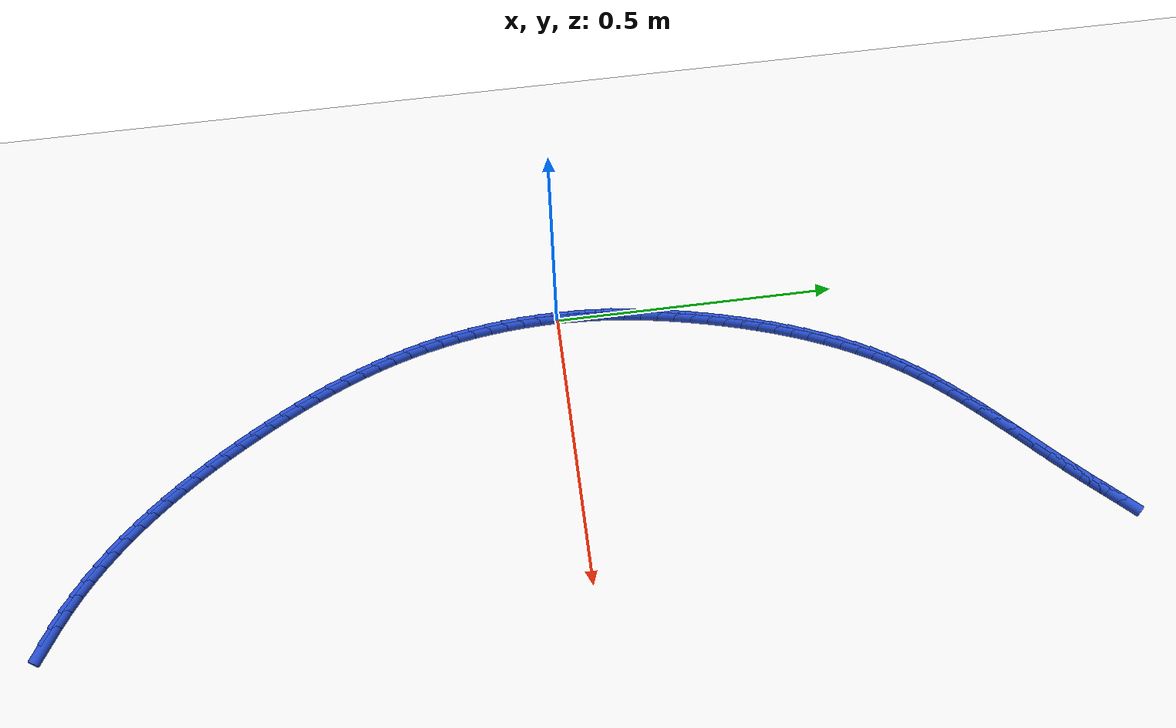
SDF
<sdf version="1.6">
 <world name="default">
  <model name="ground_plane">
   <static>1</static>
   <link name="link">
    <collision name="collision">
     <geometry><plane><normal>0 0 1</normal><size>100 100</size></plane></geometry>
     <surface><friction><ode><mu>100</mu><mu2>50</mu2></ode></friction></surface>
    </collision>
    <visual name="visual">
     <cast_shadows>0</cast_shadows>
     <geometry><plane><normal>0 0 1</normal><size>100 100</size></plane></geometry>
     <material>
      <script><uri>file://media/materials/scripts/gazebo.material</uri><name>Gazebo/WhiteGlow</name></script>
     </material>
    </visual>
   </link>
  </model>
  <model name="line">
   <link name="link_0">
    <pose>-2.5153490401663703e-17 -2.7755575615628914e-17 0.01 0 1.57 1.5464626414685878</pose>
    <collision name="collision">
     <geometry><cylinder><radius>0.01</radius><length>0.08</length></cylinder></geometry>
    </collision>
    <visual name="visual">
     <material>
      <script><name>Gazebo/Blue</name><uri>file://media/materials/scripts/gazebo.material</uri></script>
     </material>
     <geometry><cylinder><radius>0.01</radius><length>0.08</length></cylinder></geometry>
    </visual>
   </link>
   <link name="link_1">
    <pose>0.0007270755552898855 0.029873487412748315 0.01 0 1.57 1.5155445078928647</pose>
    <collision name="collision">
     <geometry><cylinder><radius>0.01</radius><length>0.08</length></cylinder></geometry>
    </collision>
    <visual name="visual">
     <material>
      <script><name>Gazebo/Blue</name><uri>file://media/materials/scripts/gazebo.material</uri></script>
     </material>
     <geometry><cylinder><radius>0.01</radius><length>0.08</length></cylinder></geometry>
    </visual>
   </link>
   <link name="link_2">
    <pose>0.0023753390440270235 0.05967496593672548 0.01 0 1.57 1.48583429547019</pose>
    <collision name="collision">
     <geometry><cylinder><radius>0.01</radius><length>0.08</length></cylinder></geometry>
    </collision>
    <visual name="visual">
     <material>
      <script><name>Gazebo/Blue</name><uri>file://media/materials/scripts/gazebo.material</uri></script>
     </material>
     <geometry><cylinder><radius>0.01</radius><length>0.08</length></cylinder></geometry>
    </visual>
   </link>
   <link name="link_3">
    <pose>0.004907457332730425 0.08940615970832055 0.01 0 1.57 1.4573828797232249</pose>
    <collision name="collision">
     <geometry><cylinder><radius>0.01</radius><length>0.08</length></cylinder></geometry>
    </collision>
    <visual name="visual">
     <material>
      <script><name>Gazebo/Blue</name><uri>file://media/materials/scripts/gazebo.material</uri></script>
     </material>
     <geometry><cylinder><radius>0.01</radius><length>0.08</length></cylinder></geometry>
    </visual>
   </link>
   <link name="link_4">
    <pose>0.008286097287919137 0.11906879286392277 0.01 0 1.57 1.4302287537072027</pose>
    <collision name="collision">
     <geometry><cylinder><radius>0.01</radius><length>0.08</length></cylinder></geometry>
    </collision>
    <visual name="visual">
     <material>
      <script><name>Gazebo/Blue</name><uri>file://media/materials/scripts/gazebo.material</uri></script>
     </material>
     <geometry><cylinder><radius>0.01</radius><length>0.08</length></cylinder></geometry>
    </visual>
   </link>
   <link name="link_5">
    <pose>0.012473925776112204 0.1486645895399213 0.01 0 1.57 1.4043990815565572</pose>
    <collision name="collision">
     <geometry><cylinder><radius>0.01</radius><length>0.08</length></cylinder></geometry>
    </collision>
    <visual name="visual">
     <material>
      <script><name>Gazebo/Blue</name><uri>file://media/materials/scripts/gazebo.material</uri></script>
     </material>
     <geometry><cylinder><radius>0.01</radius><length>0.08</length></cylinder></geometry>
    </visual>
   </link>
   <link name="link_6">
    <pose>0.01743360966382864 0.178195273872705 0.01 0 1.57 1.3799109075156035</pose>
    <collision name="collision">
     <geometry><cylinder><radius>0.01</radius><length>0.08</length></cylinder></geometry>
    </collision>
    <visual name="visual">
     <material>
      <script><name>Gazebo/Blue</name><uri>file://media/materials/scripts/gazebo.material</uri></script>
     </material>
     <geometry><cylinder><radius>0.01</radius><length>0.08</length></cylinder></geometry>
    </visual>
   </link>
   <link name="link_7">
    <pose>0.023127815817587515 0.20766256999866325 0.01 0 1.57 1.3567724485234616</pose>
    <collision name="collision">
     <geometry><cylinder><radius>0.01</radius><length>0.08</length></cylinder></geometry>
    </collision>
    <visual name="visual">
     <material>
      <script><name>Gazebo/Blue</name><uri>file://media/materials/scripts/gazebo.material</uri></script>
     </material>
     <geometry><cylinder><radius>0.01</radius><length>0.08</length></cylinder></geometry>
    </visual>
   </link>
   <link name="link_8">
    <pose>0.029519211103907858 0.23706820205418527 0.01 0 1.57 1.3349844094778982</pose>
    <collision name="collision">
     <geometry><cylinder><radius>0.01</radius><length>0.08</length></cylinder></geometry>
    </collision>
    <visual name="visual">
     <material>
      <script><name>Gazebo/Blue</name><uri>file://media/materials/scripts/gazebo.material</uri></script>
     </material>
     <geometry><cylinder><radius>0.01</radius><length>0.08</length></cylinder></geometry>
    </visual>
   </link>
   <link name="link_9">
    <pose>0.03657046238930871 0.26641389417566 0.01 0 1.57 1.314487193543084</pose>
    <collision name="collision">
     <geometry><cylinder><radius>0.01</radius><length>0.08</length></cylinder></geometry>
    </collision>
    <visual name="visual">
     <material>
      <script><name>Gazebo/Blue</name><uri>file://media/materials/scripts/gazebo.material</uri></script>
     </material>
     <geometry><cylinder><radius>0.01</radius><length>0.08</length></cylinder></geometry>
    </visual>
   </link>
   <link name="link_10">
    <pose>0.044245577073488154 0.2957000271134144 0.01 0 1.57 1.2938691671459757</pose>
    <collision name="collision">
     <geometry><cylinder><radius>0.01</radius><length>0.08</length></cylinder></geometry>
    </collision>
    <visual name="visual">
     <material>
      <script><name>Gazebo/Blue</name><uri>file://media/materials/scripts/gazebo.material</uri></script>
     </material>
     <geometry><cylinder><radius>0.01</radius><length>0.08</length></cylinder></geometry>
    </visual>
   </link>
   <link name="link_11">
    <pose>0.05254296489867593 0.3248925060611907 0.01 0 1.57 1.2715785965053803</pose>
    <collision name="collision">
     <geometry><cylinder><radius>0.01</radius><length>0.08</length></cylinder></geometry>
    </collision>
    <visual name="visual">
     <material>
      <script><name>Gazebo/Blue</name><uri>file://media/materials/scripts/gazebo.material</uri></script>
     </material>
     <geometry><cylinder><radius>0.01</radius><length>0.08</length></cylinder></geometry>
    </visual>
   </link>
   <link name="link_12">
    <pose>0.0614975466002706 0.35392064751794183 0.01 0 1.57 1.2474417422383317</pose>
    <collision name="collision">
     <geometry><cylinder><radius>0.01</radius><length>0.08</length></cylinder></geometry>
    </collision>
    <visual name="visual">
     <material>
      <script><name>Gazebo/Blue</name><uri>file://media/materials/scripts/gazebo.material</uri></script>
     </material>
     <geometry><cylinder><radius>0.01</radius><length>0.08</length></cylinder></geometry>
    </visual>
   </link>
   <link name="link_13">
    <pose>0.07114600564489133 0.3827120015000069 0.01 0 1.57 1.2213468025566816</pose>
    <collision name="collision">
     <geometry><cylinder><radius>0.01</radius><length>0.08</length></cylinder></geometry>
    </collision>
    <visual name="visual">
     <material>
      <script><name>Gazebo/Blue</name><uri>file://media/materials/scripts/gazebo.material</uri></script>
     </material>
     <geometry><cylinder><radius>0.01</radius><length>0.08</length></cylinder></geometry>
    </visual>
   </link>
   <link name="link_14">
    <pose>0.08152502549915738 0.41119411802372496 0.01 0 1.57 1.1931741730922765</pose>
    <collision name="collision">
     <geometry><cylinder><radius>0.01</radius><length>0.08</length></cylinder></geometry>
    </collision>
    <visual name="visual">
     <material>
      <script><name>Gazebo/Blue</name><uri>file://media/materials/scripts/gazebo.material</uri></script>
     </material>
     <geometry><cylinder><radius>0.01</radius><length>0.08</length></cylinder></geometry>
    </visual>
   </link>
   <link name="link_15">
    <pose>0.092671289629688 0.4392945471054355 0.01 0 1.57 1.1627984171595789</pose>
    <collision name="collision">
     <geometry><cylinder><radius>0.01</radius><length>0.08</length></cylinder></geometry>
    </collision>
    <visual name="visual">
     <material>
      <script><name>Gazebo/Blue</name><uri>file://media/materials/scripts/gazebo.material</uri></script>
     </material>
     <geometry><cylinder><radius>0.01</radius><length>0.08</length></cylinder></geometry>
    </visual>
   </link>
   <link name="link_16">
    <pose>0.1046214815031024 0.4669408387614776 0.01 0 1.57 1.1300910325508897</pose>
    <collision name="collision">
     <geometry><cylinder><radius>0.01</radius><length>0.08</length></cylinder></geometry>
    </collision>
    <visual name="visual">
     <material>
      <script><name>Gazebo/Blue</name><uri>file://media/materials/scripts/gazebo.material</uri></script>
     </material>
     <geometry><cylinder><radius>0.01</radius><length>0.08</length></cylinder></geometry>
    </visual>
   </link>
   <link name="link_17">
    <pose>0.11741228458601984 0.49406054300819063 0.01 0 1.57 1.094924238850136</pose>
    <collision name="collision">
     <geometry><cylinder><radius>0.01</radius><length>0.08</length></cylinder></geometry>
    </collision>
    <visual name="visual">
     <material>
      <script><name>Gazebo/Blue</name><uri>file://media/materials/scripts/gazebo.material</uri></script>
     </material>
     <geometry><cylinder><radius>0.01</radius><length>0.08</length></cylinder></geometry>
    </visual>
   </link>
   <link name="link_18">
    <pose>0.13108038234505953 0.5205812098619137 0.01 0 1.57 1.0571760160030272</pose>
    <collision name="collision">
     <geometry><cylinder><radius>0.01</radius><length>0.08</length></cylinder></geometry>
    </collision>
    <visual name="visual">
     <material>
      <script><name>Gazebo/Blue</name><uri>file://media/materials/scripts/gazebo.material</uri></script>
     </material>
     <geometry><cylinder><radius>0.01</radius><length>0.08</length></cylinder></geometry>
    </visual>
   </link>
   <link name="link_19">
    <pose>0.1456624582468407 0.5464303893389861 0.01 0 1.57 1.0167366031096678</pose>
    <collision name="collision">
     <geometry><cylinder><radius>0.01</radius><length>0.08</length></cylinder></geometry>
    </collision>
    <visual name="visual">
     <material>
      <script><name>Gazebo/Blue</name><uri>file://media/materials/scripts/gazebo.material</uri></script>
     </material>
     <geometry><cylinder><radius>0.01</radius><length>0.08</length></cylinder></geometry>
    </visual>
   </link>
   <link name="link_20">
    <pose>0.16119519575798263 0.5715356314557472 0.01 0 1.57 0.973535501526441</pose>
    <collision name="collision">
     <geometry><cylinder><radius>0.01</radius><length>0.08</length></cylinder></geometry>
    </collision>
    <visual name="visual">
     <material>
      <script><name>Gazebo/Blue</name><uri>file://media/materials/scripts/gazebo.material</uri></script>
     </material>
     <geometry><cylinder><radius>0.01</radius><length>0.08</length></cylinder></geometry>
    </visual>
   </link>
   <link name="link_21">
    <pose>0.17771493513567257 0.5958249689958518 0.01 0 1.57 0.9298837224916326</pose>
    <collision name="collision">
     <geometry><cylinder><radius>0.01</radius><length>0.08</length></cylinder></geometry>
    </collision>
    <visual name="visual">
     <material>
      <script><name>Gazebo/Blue</name><uri>file://media/materials/scripts/gazebo.material</uri></script>
     </material>
     <geometry><cylinder><radius>0.01</radius><length>0.08</length></cylinder></geometry>
    </visual>
   </link>
   <link name="link_22">
    <pose>0.19521583272180534 0.6192857717356759 0.01 0 1.57 0.8905648073119198</pose>
    <collision name="collision">
     <geometry><cylinder><radius>0.01</radius><length>0.08</length></cylinder></geometry>
    </collision>
    <visual name="visual">
     <material>
      <script><name>Gazebo/Blue</name><uri>file://media/materials/scripts/gazebo.material</uri></script>
     </material>
     <geometry><cylinder><radius>0.01</radius><length>0.08</length></cylinder></geometry>
    </visual>
   </link>
   <link name="link_23">
    <pose>0.2136097624296306 0.642021150056412 0.01 0 1.57 0.8563678550724898</pose>
    <collision name="collision">
     <geometry><cylinder><radius>0.01</radius><length>0.08</length></cylinder></geometry>
    </collision>
    <visual name="visual">
     <material>
      <script><name>Gazebo/Blue</name><uri>file://media/materials/scripts/gazebo.material</uri></script>
     </material>
     <geometry><cylinder><radius>0.01</radius><length>0.08</length></cylinder></geometry>
    </visual>
   </link>
   <link name="link_24">
    <pose>0.2327990947141584 0.6641475821508581 0.01 0 1.57 0.8274449893817979</pose>
    <collision name="collision">
     <geometry><cylinder><radius>0.01</radius><length>0.08</length></cylinder></geometry>
    </collision>
    <visual name="visual">
     <material>
      <script><name>Gazebo/Blue</name><uri>file://media/materials/scripts/gazebo.material</uri></script>
     </material>
     <geometry><cylinder><radius>0.01</radius><length>0.08</length></cylinder></geometry>
    </visual>
   </link>
   <link name="link_25">
    <pose>0.25268620003039877 0.685781546211812 0.01 0 1.57 0.8038586675606355</pose>
    <collision name="collision">
     <geometry><cylinder><radius>0.01</radius><length>0.08</length></cylinder></geometry>
    </collision>
    <visual name="visual">
     <material>
      <script><name>Gazebo/Blue</name><uri>file://media/materials/scripts/gazebo.material</uri></script>
     </material>
     <geometry><cylinder><radius>0.01</radius><length>0.08</length></cylinder></geometry>
    </visual>
   </link>
   <link name="link_26">
    <pose>0.2731734488333616 0.7070395204320706 0.01 0 1.57 0.7856053602360004</pose>
    <collision name="collision">
     <geometry><cylinder><radius>0.01</radius><length>0.08</length></cylinder></geometry>
    </collision>
    <visual name="visual">
     <material>
      <script><name>Gazebo/Blue</name><uri>file://media/materials/scripts/gazebo.material</uri></script>
     </material>
     <geometry><cylinder><radius>0.01</radius><length>0.08</length></cylinder></geometry>
    </visual>
   </link>
   <link name="link_27">
    <pose>0.2941632115780569 0.7280379830044326 0.01 0 1.57 0.7726363225102736</pose>
    <collision name="collision">
     <geometry><cylinder><radius>0.01</radius><length>0.08</length></cylinder></geometry>
    </collision>
    <visual name="visual">
     <material>
      <script><name>Gazebo/Blue</name><uri>file://media/materials/scripts/gazebo.material</uri></script>
     </material>
     <geometry><cylinder><radius>0.01</radius><length>0.08</length></cylinder></geometry>
    </visual>
   </link>
   <link name="link_28">
    <pose>0.3155578587194946 0.748893412121695 0.01 0 1.57 0.7648740715352811</pose>
    <collision name="collision">
     <geometry><cylinder><radius>0.01</radius><length>0.08</length></cylinder></geometry>
    </collision>
    <visual name="visual">
     <material>
      <script><name>Gazebo/Blue</name><uri>file://media/materials/scripts/gazebo.material</uri></script>
     </material>
     <geometry><cylinder><radius>0.01</radius><length>0.08</length></cylinder></geometry>
    </visual>
   </link>
   <link name="link_29">
    <pose>0.33725976071268504 0.7697222859766563 0.01 0 1.57 0.7622240964671431</pose>
    <collision name="collision">
     <geometry><cylinder><radius>0.01</radius><length>0.08</length></cylinder></geometry>
    </collision>
    <visual name="visual">
     <material>
      <script><name>Gazebo/Blue</name><uri>file://media/materials/scripts/gazebo.material</uri></script>
     </material>
     <geometry><cylinder><radius>0.01</radius><length>0.08</length></cylinder></geometry>
    </visual>
   </link>
   <link name="link_30">
    <pose>0.35917128801263787 0.7906410827621134 0.01 0 1.57 0.7645818940894202</pose>
    <collision name="collision">
     <geometry><cylinder><radius>0.01</radius><length>0.08</length></cylinder></geometry>
    </collision>
    <visual name="visual">
     <material>
      <script><name>Gazebo/Blue</name><uri>file://media/materials/scripts/gazebo.material</uri></script>
     </material>
     <geometry><cylinder><radius>0.01</radius><length>0.08</length></cylinder></geometry>
    </visual>
   </link>
   <link name="link_31">
    <pose>0.38119481107436315 0.8117662806708648 0.01 0 1.57 0.7718357215952888</pose>
    <collision name="collision">
     <geometry><cylinder><radius>0.01</radius><length>0.08</length></cylinder></geometry>
    </collision>
    <visual name="visual">
     <material>
      <script><name>Gazebo/Blue</name><uri>file://media/materials/scripts/gazebo.material</uri></script>
     </material>
     <geometry><cylinder><radius>0.01</radius><length>0.08</length></cylinder></geometry>
    </visual>
   </link>
   <link name="link_32">
    <pose>0.4032327003528711 0.8332143578957077 0.01 0 1.57 0.783865590272139</pose>
    <collision name="collision">
     <geometry><cylinder><radius>0.01</radius><length>0.08</length></cylinder></geometry>
    </collision>
    <visual name="visual">
     <material>
      <script><name>Gazebo/Blue</name><uri>file://media/materials/scripts/gazebo.material</uri></script>
     </material>
     <geometry><cylinder><radius>0.01</radius><length>0.08</length></cylinder></geometry>
    </visual>
   </link>
   <link name="link_33">
    <pose>0.42518732630317146 0.8551017926294397 0.01 0 1.57 0.7995488786064916</pose>
    <collision name="collision">
     <geometry><cylinder><radius>0.01</radius><length>0.08</length></cylinder></geometry>
    </collision>
    <visual name="visual">
     <material>
      <script><name>Gazebo/Blue</name><uri>file://media/materials/scripts/gazebo.material</uri></script>
     </material>
     <geometry><cylinder><radius>0.01</radius><length>0.08</length></cylinder></geometry>
    </visual>
   </link>
   <link name="link_34">
    <pose>0.44697429958128687 0.8775142613748956 0.01 0 1.57 0.8061112273929352</pose>
    <collision name="collision">
     <geometry><cylinder><radius>0.01</radius><length>0.08</length></cylinder></geometry>
    </collision>
    <visual name="visual">
     <material>
      <script><name>Gazebo/Blue</name><uri>file://media/materials/scripts/gazebo.material</uri></script>
     </material>
     <geometry><cylinder><radius>0.01</radius><length>0.08</length></cylinder></geometry>
    </visual>
   </link>
   <link name="link_35">
    <pose>0.4686805549670649 0.9001388762520655 0.01 0 1.57 0.794795504380084</pose>
    <collision name="collision">
     <geometry><cylinder><radius>0.01</radius><length>0.08</length></cylinder></geometry>
    </collision>
    <visual name="visual">
     <material>
      <script><name>Gazebo/Blue</name><uri>file://media/materials/scripts/gazebo.material</uri></script>
     </material>
     <geometry><cylinder><radius>0.01</radius><length>0.08</length></cylinder></geometry>
    </visual>
   </link>
   <link name="link_185">
    <pose>0.48193581521447254 -0.8869491084327381 0.01 0 1.57 -0.5401463394587672</pose>
    <collision name="collision">
     <geometry><cylinder><radius>0.01</radius><length>0.08</length></cylinder></geometry>
    </collision>
    <visual name="visual">
     <material>
      <script><name>Gazebo/Blue</name><uri>file://media/materials/scripts/gazebo.material</uri></script>
     </material>
     <geometry><cylinder><radius>0.01</radius><length>0.08</length></cylinder></geometry>
    </visual>
   </link>
   <link name="link_186">
    <pose>0.4565084283833136 -0.8717021210275813 0.01 0 1.57 -0.580659683248216</pose>
    <collision name="collision">
     <geometry><cylinder><radius>0.01</radius><length>0.08</length></cylinder></geometry>
    </collision>
    <visual name="visual">
     <material>
      <script><name>Gazebo/Blue</name><uri>file://media/materials/scripts/gazebo.material</uri></script>
     </material>
     <geometry><cylinder><radius>0.01</radius><length>0.08</length></cylinder></geometry>
    </visual>
   </link>
   <link name="link_187">
    <pose>0.43176873233060736 -0.8554701168439999 0.01 0 1.57 -0.6255648159212944</pose>
    <collision name="collision">
     <geometry><cylinder><radius>0.01</radius><length>0.08</length></cylinder></geometry>
    </collision>
    <visual name="visual">
     <material>
      <script><name>Gazebo/Blue</name><uri>file://media/materials/scripts/gazebo.material</uri></script>
     </material>
     <geometry><cylinder><radius>0.01</radius><length>0.08</length></cylinder></geometry>
    </visual>
   </link>
   <link name="link_188">
    <pose>0.40778390731732295 -0.8381448316078577 0.01 0 1.57 -0.6705192574799951</pose>
    <collision name="collision">
     <geometry><cylinder><radius>0.01</radius><length>0.08</length></cylinder></geometry>
    </collision>
    <visual name="visual">
     <material>
      <script><name>Gazebo/Blue</name><uri>file://media/materials/scripts/gazebo.material</uri></script>
     </material>
     <geometry><cylinder><radius>0.01</radius><length>0.08</length></cylinder></geometry>
    </visual>
   </link>
   <link name="link_189">
    <pose>0.3845655975952552 -0.819730397115662 0.01 0 1.57 -0.7130100279861945</pose>
    <collision name="collision">
     <geometry><cylinder><radius>0.01</radius><length>0.08</length></cylinder></geometry>
    </collision>
    <visual name="visual">
     <material>
      <script><name>Gazebo/Blue</name><uri>file://media/materials/scripts/gazebo.material</uri></script>
     </material>
     <geometry><cylinder><radius>0.01</radius><length>0.08</length></cylinder></geometry>
    </visual>
   </link>
   <link name="link_190">
    <pose>0.36209299339758516 -0.8002966269480949 0.01 0 1.57 -0.7529948428640153</pose>
    <collision name="collision">
     <geometry><cylinder><radius>0.01</radius><length>0.08</length></cylinder></geometry>
    </collision>
    <visual name="visual">
     <material>
      <script><name>Gazebo/Blue</name><uri>file://media/materials/scripts/gazebo.material</uri></script>
     </material>
     <geometry><cylinder><radius>0.01</radius><length>0.08</length></cylinder></geometry>
    </visual>
   </link>
   <link name="link_191">
    <pose>0.3403448773243415 -0.7799141596706646 0.01 0 1.57 -0.7904963010201925</pose>
    <collision name="collision">
     <geometry><cylinder><radius>0.01</radius><length>0.08</length></cylinder></geometry>
    </collision>
    <visual name="visual">
     <material>
      <script><name>Gazebo/Blue</name><uri>file://media/materials/scripts/gazebo.material</uri></script>
     </material>
     <geometry><cylinder><radius>0.01</radius><length>0.08</length></cylinder></geometry>
    </visual>
   </link>
   <link name="link_192">
    <pose>0.3193000319755511 -0.7586536338488779 0.01 0 1.57 -0.8255633084064025</pose>
    <collision name="collision">
     <geometry><cylinder><radius>0.01</radius><length>0.08</length></cylinder></geometry>
    </collision>
    <visual name="visual">
     <material>
      <script><name>Gazebo/Blue</name><uri>file://media/materials/scripts/gazebo.material</uri></script>
     </material>
     <geometry><cylinder><radius>0.01</radius><length>0.08</length></cylinder></geometry>
    </visual>
   </link>
   <link name="link_193">
    <pose>0.29893723995124183 -0.7365856880482422 0.01 0 1.57 -0.8582638315214423</pose>
    <collision name="collision">
     <geometry><cylinder><radius>0.01</radius><length>0.08</length></cylinder></geometry>
    </collision>
    <visual name="visual">
     <material>
      <script><name>Gazebo/Blue</name><uri>file://media/materials/scripts/gazebo.material</uri></script>
     </material>
     <geometry><cylinder><radius>0.01</radius><length>0.08</length></cylinder></geometry>
    </visual>
   </link>
   <link name="link_194">
    <pose>0.2792352838514409 -0.7137809608342648 0.01 0 1.57 -0.8886785538706781</pose>
    <collision name="collision">
     <geometry><cylinder><radius>0.01</radius><length>0.08</length></cylinder></geometry>
    </collision>
    <visual name="visual">
     <material>
      <script><name>Gazebo/Blue</name><uri>file://media/materials/scripts/gazebo.material</uri></script>
     </material>
     <geometry><cylinder><radius>0.01</radius><length>0.08</length></cylinder></geometry>
    </visual>
   </link>
   <link name="link_195">
    <pose>0.26017294627617593 -0.6903100907724525 0.01 0 1.57 -0.9168955218274956</pose>
    <collision name="collision">
     <geometry><cylinder><radius>0.01</radius><length>0.08</length></cylinder></geometry>
    </collision>
    <visual name="visual">
     <material>
      <script><name>Gazebo/Blue</name><uri>file://media/materials/scripts/gazebo.material</uri></script>
     </material>
     <geometry><cylinder><radius>0.01</radius><length>0.08</length></cylinder></geometry>
    </visual>
   </link>
   <link name="link_196">
    <pose>0.24172900982547488 -0.6662437164283136 0.01 0 1.57 -0.9430057573539465</pose>
    <collision name="collision">
     <geometry><cylinder><radius>0.01</radius><length>0.08</length></cylinder></geometry>
    </collision>
    <visual name="visual">
     <material>
      <script><name>Gazebo/Blue</name><uri>file://media/materials/scripts/gazebo.material</uri></script>
     </material>
     <geometry><cylinder><radius>0.01</radius><length>0.08</length></cylinder></geometry>
    </visual>
   </link>
   <link name="link_197">
    <pose>0.22388225709936535 -0.6416524763673548 0.01 0 1.57 -0.9670997477073168</pose>
    <collision name="collision">
     <geometry><cylinder><radius>0.01</radius><length>0.08</length></cylinder></geometry>
    </collision>
    <visual name="visual">
     <material>
      <script><name>Gazebo/Blue</name><uri>file://media/materials/scripts/gazebo.material</uri></script>
     </material>
     <geometry><cylinder><radius>0.01</radius><length>0.08</length></cylinder></geometry>
    </visual>
   </link>
   <link name="link_198">
    <pose>0.20661147069787478 -0.6166070091550837 0.01 0 1.57 -0.9892646871400754</pose>
    <collision name="collision">
     <geometry><cylinder><radius>0.01</radius><length>0.08</length></cylinder></geometry>
    </collision>
    <visual name="visual">
     <material>
      <script><name>Gazebo/Blue</name><uri>file://media/materials/scripts/gazebo.material</uri></script>
     </material>
     <geometry><cylinder><radius>0.01</radius><length>0.08</length></cylinder></geometry>
    </visual>
   </link>
   <link name="link_199">
    <pose>0.18989543322103028 -0.5911779533570066 0.01 0 1.57 -1.0095823329127023</pose>
    <collision name="collision">
     <geometry><cylinder><radius>0.01</radius><length>0.08</length></cylinder></geometry>
    </collision>
    <visual name="visual">
     <material>
      <script><name>Gazebo/Blue</name><uri>file://media/materials/scripts/gazebo.material</uri></script>
     </material>
     <geometry><cylinder><radius>0.01</radius><length>0.08</length></cylinder></geometry>
    </visual>
   </link>
   <link name="link_200">
    <pose>0.17371292726886034 -0.5654359475386324 0.01 0 1.57 -1.0281273929122843</pose>
    <collision name="collision">
     <geometry><cylinder><radius>0.01</radius><length>0.08</length></cylinder></geometry>
    </collision>
    <visual name="visual">
     <material>
      <script><name>Gazebo/Blue</name><uri>file://media/materials/scripts/gazebo.material</uri></script>
     </material>
     <geometry><cylinder><radius>0.01</radius><length>0.08</length></cylinder></geometry>
    </visual>
   </link>
   <link name="link_201">
    <pose>0.15804273649212447 -0.5394516288547292 0.01 0 1.57 -1.0456102445264663</pose>
    <collision name="collision">
     <geometry><cylinder><radius>0.01</radius><length>0.08</length></cylinder></geometry>
    </collision>
    <visual name="visual">
     <material>
      <script><name>Gazebo/Blue</name><uri>file://media/materials/scripts/gazebo.material</uri></script>
     </material>
     <geometry><cylinder><radius>0.01</radius><length>0.08</length></cylinder></geometry>
    </visual>
   </link>
   <link name="link_202">
    <pose>0.14287630699256265 -0.5132786335534865 0.01 0 1.57 -1.0643211290910854</pose>
    <collision name="collision">
     <geometry><cylinder><radius>0.01</radius><length>0.08</length></cylinder></geometry>
    </collision>
    <visual name="visual">
     <material>
      <script><name>Gazebo/Blue</name><uri>file://media/materials/scripts/gazebo.material</uri></script>
     </material>
     <geometry><cylinder><radius>0.01</radius><length>0.08</length></cylinder></geometry>
    </visual>
   </link>
   <link name="link_203">
    <pose>0.12824927221684077 -0.48691127090727315 0.01 0 1.57 -1.08476667301454</pose>
    <collision name="collision">
     <geometry><cylinder><radius>0.01</radius><length>0.08</length></cylinder></geometry>
    </collision>
    <visual name="visual">
     <material>
      <script><name>Gazebo/Blue</name><uri>file://media/materials/scripts/gazebo.material</uri></script>
     </material>
     <geometry><cylinder><radius>0.01</radius><length>0.08</length></cylinder></geometry>
    </visual>
   </link>
   <link name="link_204">
    <pose>0.11420689843008026 -0.46033091693826184 0.01 0 1.57 -1.1069559300185443</pose>
    <collision name="collision">
     <geometry><cylinder><radius>0.01</radius><length>0.08</length></cylinder></geometry>
    </collision>
    <visual name="visual">
     <material>
      <script><name>Gazebo/Blue</name><uri>file://media/materials/scripts/gazebo.material</uri></script>
     </material>
     <geometry><cylinder><radius>0.01</radius><length>0.08</length></cylinder></geometry>
    </visual>
   </link>
   <link name="link_205">
    <pose>0.10079445189740152 -0.43351894766862314 0.01 0 1.57 -1.1308903353286641</pose>
    <collision name="collision">
     <geometry><cylinder><radius>0.01</radius><length>0.08</length></cylinder></geometry>
    </collision>
    <visual name="visual">
     <material>
      <script><name>Gazebo/Blue</name><uri>file://media/materials/scripts/gazebo.material</uri></script>
     </material>
     <geometry><cylinder><radius>0.01</radius><length>0.08</length></cylinder></geometry>
    </visual>
   </link>
   <link name="link_206">
    <pose>0.08805719888392519 -0.40645673912052893 0.01 0 1.57 -1.1565616405454724</pose>
    <collision name="collision">
     <geometry><cylinder><radius>0.01</radius><length>0.08</length></cylinder></geometry>
    </collision>
    <visual name="visual">
     <material>
      <script><name>Gazebo/Blue</name><uri>file://media/materials/scripts/gazebo.material</uri></script>
     </material>
     <geometry><cylinder><radius>0.01</radius><length>0.08</length></cylinder></geometry>
    </visual>
   </link>
   <link name="link_207">
    <pose>0.07604040565477166 -0.3791256673161497 0.01 0 1.57 -1.183949748401724</pose>
    <collision name="collision">
     <geometry><cylinder><radius>0.01</radius><length>0.08</length></cylinder></geometry>
    </collision>
    <visual name="visual">
     <material>
      <script><name>Gazebo/Blue</name><uri>file://media/materials/scripts/gazebo.material</uri></script>
     </material>
     <geometry><cylinder><radius>0.01</radius><length>0.08</length></cylinder></geometry>
    </visual>
   </link>
   <link name="link_208">
    <pose>0.06478933847506221 -0.35150710827765824 0.01 0 1.57 -1.21302052990514</pose>
    <collision name="collision">
     <geometry><cylinder><radius>0.01</radius><length>0.08</length></cylinder></geometry>
    </collision>
    <visual name="visual">
     <material>
      <script><name>Gazebo/Blue</name><uri>file://media/materials/scripts/gazebo.material</uri></script>
     </material>
     <geometry><cylinder><radius>0.01</radius><length>0.08</length></cylinder></geometry>
    </visual>
   </link>
   <link name="link_209">
    <pose>0.054349263609917264 -0.3235824380272252 0.01 0 1.57 -1.2437237342493506</pose>
    <collision name="collision">
     <geometry><cylinder><radius>0.01</radius><length>0.08</length></cylinder></geometry>
    </collision>
    <visual name="visual">
     <material>
      <script><name>Gazebo/Blue</name><uri>file://media/materials/scripts/gazebo.material</uri></script>
     </material>
     <geometry><cylinder><radius>0.01</radius><length>0.08</length></cylinder></geometry>
    </visual>
   </link>
   <link name="link_210">
    <pose>0.0447654473244575 -0.2953330325870223 0.01 0 1.57 -1.2759447699367077</pose>
    <collision name="collision">
     <geometry><cylinder><radius>0.01</radius><length>0.08</length></cylinder></geometry>
    </collision>
    <visual name="visual">
     <material>
      <script><name>Gazebo/Blue</name><uri>file://media/materials/scripts/gazebo.material</uri></script>
     </material>
     <geometry><cylinder><radius>0.01</radius><length>0.08</length></cylinder></geometry>
    </visual>
   </link>
   <link name="link_211">
    <pose>0.036082166370864435 -0.26674177683806777 0.01 0 1.57 -1.3086694944839956</pose>
    <collision name="collision">
     <geometry><cylinder><radius>0.01</radius><length>0.08</length></cylinder></geometry>
    </collision>
    <visual name="visual">
     <material>
      <script><name>Gazebo/Blue</name><uri>file://media/materials/scripts/gazebo.material</uri></script>
     </material>
     <geometry><cylinder><radius>0.01</radius><length>0.08</length></cylinder></geometry>
    </visual>
   </link>
   <link name="link_212">
    <pose>0.028323201977250276 -0.23782280826211893 0.01 0 1.57 -1.3410408770542406</pose>
    <collision name="collision">
     <geometry><cylinder><radius>0.01</radius><length>0.08</length></cylinder></geometry>
    </collision>
    <visual name="visual">
     <material>
      <script><name>Gazebo/Blue</name><uri>file://media/materials/scripts/gazebo.material</uri></script>
     </material>
     <geometry><cylinder><radius>0.01</radius><length>0.08</length></cylinder></geometry>
    </visual>
   </link>
   <link name="link_213">
    <pose>0.021493023543201636 -0.20861971198347606 0.01 0 1.57 -1.3731010706556541</pose>
    <collision name="collision">
     <geometry><cylinder><radius>0.01</radius><length>0.08</length></cylinder></geometry>
    </collision>
    <visual name="visual">
     <material>
      <script><name>Gazebo/Blue</name><uri>file://media/materials/scripts/gazebo.material</uri></script>
     </material>
     <geometry><cylinder><radius>0.01</radius><length>0.08</length></cylinder></geometry>
    </visual>
   </link>
   <link name="link_214">
    <pose>0.015595347957138662 -0.17917722059312027 0.01 0 1.57 -1.4049277784338672</pose>
    <collision name="collision">
     <geometry><cylinder><radius>0.01</radius><length>0.08</length></cylinder></geometry>
    </collision>
    <visual name="visual">
     <material>
      <script><name>Gazebo/Blue</name><uri>file://media/materials/scripts/gazebo.material</uri></script>
     </material>
     <geometry><cylinder><radius>0.01</radius><length>0.08</length></cylinder></geometry>
    </visual>
   </link>
   <link name="link_215">
    <pose>0.010633892107481717 -0.14954006668203362 0.01 0 1.57 -1.4365989306455225</pose>
    <collision name="collision">
     <geometry><cylinder><radius>0.01</radius><length>0.08</length></cylinder></geometry>
    </collision>
    <visual name="visual">
     <material>
      <script><name>Gazebo/Blue</name><uri>file://media/materials/scripts/gazebo.material</uri></script>
     </material>
     <geometry><cylinder><radius>0.01</radius><length>0.08</length></cylinder></geometry>
    </visual>
   </link>
   <link name="link_216">
    <pose>0.006612372882651072 -0.11975298284119705 0.01 0 1.57 -1.4681926696593963</pose>
    <collision name="collision">
     <geometry><cylinder><radius>0.01</radius><length>0.08</length></cylinder></geometry>
    </collision>
    <visual name="visual">
     <material>
      <script><name>Gazebo/Blue</name><uri>file://media/materials/scripts/gazebo.material</uri></script>
     </material>
     <geometry><cylinder><radius>0.01</radius><length>0.08</length></cylinder></geometry>
    </visual>
   </link>
   <link name="link_217">
    <pose>0.003534507171067282 -0.08986070166159407 0.01 0 1.57 -1.4997873693808192</pose>
    <collision name="collision">
     <geometry><cylinder><radius>0.01</radius><length>0.08</length></cylinder></geometry>
    </collision>
    <visual name="visual">
     <material>
      <script><name>Gazebo/Blue</name><uri>file://media/materials/scripts/gazebo.material</uri></script>
     </material>
     <geometry><cylinder><radius>0.01</radius><length>0.08</length></cylinder></geometry>
    </visual>
   </link>
   <link name="link_218">
    <pose>0.0014040118611505941 -0.05990795573420573 0.01 0 1.57 -1.5314616736348479</pose>
    <collision name="collision">
     <geometry><cylinder><radius>0.01</radius><length>0.08</length></cylinder></geometry>
    </collision>
    <visual name="visual">
     <material>
      <script><name>Gazebo/Blue</name><uri>file://media/materials/scripts/gazebo.material</uri></script>
     </material>
     <geometry><cylinder><radius>0.01</radius><length>0.08</length></cylinder></geometry>
    </visual>
   </link>
   <link name="link_219">
    <pose>0.00022460384132136574 -0.029939477650013965 0.01 0 1.57 -1.5632945383335088</pose>
    <collision name="collision">
     <geometry><cylinder><radius>0.01</radius><length>0.08</length></cylinder></geometry>
    </collision>
    <visual name="visual">
     <material>
      <script><name>Gazebo/Blue</name><uri>file://media/materials/scripts/gazebo.material</uri></script>
     </material>
     <geometry><cylinder><radius>0.01</radius><length>0.08</length></cylinder></geometry>
    </visual>
   </link>
   <link name="link_220">
    <pose>-3.642919299551295e-17 9.71445146547012e-17 0.01 0 1.57 1.54622739148911</pose>
    <collision name="collision">
     <geometry><cylinder><radius>0.01</radius><length>0.08</length></cylinder></geometry>
    </collision>
    <visual name="visual">
     <material>
      <script><name>Gazebo/Blue</name><uri>file://media/materials/scripts/gazebo.material</uri></script>
     </material>
     <geometry><cylinder><radius>0.01</radius><length>0.08</length></cylinder></geometry>
    </visual>
   </link>
   <link name="link_221">
    <pose>0.0007339172256067257 0.029865744624852357 0.01 0 1.57 1.5138391641721112</pose>
    <collision name="collision">
     <geometry><cylinder><radius>0.01</radius><length>0.08</length></cylinder></geometry>
    </collision>
    <visual name="visual">
     <material>
      <script><name>Gazebo/Blue</name><uri>file://media/materials/scripts/gazebo.material</uri></script>
     </material>
     <geometry><cylinder><radius>0.01</radius><length>0.08</length></cylinder></geometry>
    </visual>
   </link>
   <link name="link_222">
    <pose>0.002430072406562082 0.05961302363356388 0.01 0 1.57 1.5300547644485467</pose>
    <collision name="collision">
     <geometry><cylinder><radius>0.01</radius><length>0.08</length></cylinder></geometry>
    </collision>
    <visual name="visual">
     <material>
      <script><name>Gazebo/Blue</name><uri>file://media/materials/scripts/gazebo.material</uri></script>
     </material>
     <geometry><cylinder><radius>0.01</radius><length>0.08</length></cylinder></geometry>
    </visual>
   </link>
  </model>
 </world>
</sdf>
